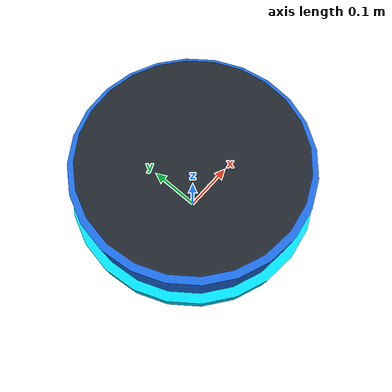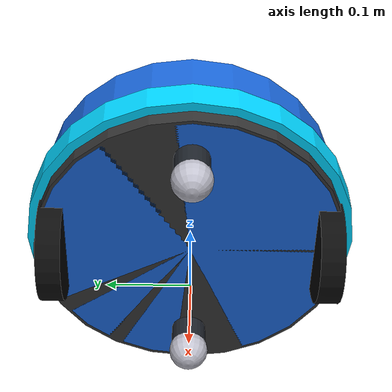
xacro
<?xml version="1.0"?>
<!-- GRaCEmo ViRa — Clean Rebuild                                                   -->
<!-- Piece 1: Mobile Base Subsystem                                                 -->
<robot name="gracemo_vira_base" xmlns:xacro="http://www.ros.org/wiki/xacro">

  <!-- Include Shared Materials -->
  <xacro:include filename="materials.xacro" />

  <!-- Mathematical Parameters & Dimensions                                     -->
  <xacro:property name="wheel_radius"     value="0.065" />  <!-- 130mm diameter -->
  <xacro:property name="wheel_width"      value="0.030" />  <!-- 30mm thickness -->
  <xacro:property name="wheelbase"        value="0.340" />  <!-- 340mm track width -->
  <xacro:property name="chassis_radius"   value="0.190" />  <!-- 380mm diameter -->
  <xacro:property name="chassis_height"   value="0.140" />  <!-- 140mm height -->
  <xacro:property name="bumper_radius"    value="0.205" />  <!-- 410mm diameter ring -->
  <xacro:property name="bumper_height"    value="0.040" />  <!-- 40mm ring thickness -->
  <xacro:property name="caster_radius"    value="0.025" />  <!-- 50mm ball diameter -->
  <xacro:property name="caster_x_offset"  value="0.140" />  <!-- 140mm fore/aft from axle -->

  <!-- Base Footprint (Ground Projection: Z = 0.000m)                           -->
  <link name="base_footprint" />

  <joint name="base_footprint_joint" type="fixed">
    <parent link="base_footprint" />
    <child link="base_link" />
    <origin xyz="0 0 ${wheel_radius}" rpy="0 0 0" />
  </joint>

  <!-- Base Link: Cylindrical Mobile Chassis & Balanced Core                    -->
  <link name="base_link">
    <!-- Visual 1: Main Cylindrical Outer Hull (Chassis Blue) -->
    <visual>
      <origin xyz="0 0 ${chassis_height / 2.0}" rpy="0 0 0" />
      <geometry>
        <cylinder radius="${chassis_radius}" length="${chassis_height}" />
      </geometry>
      <material name="chassis_blue" />
    </visual>

    <!-- Visual 2: Lower Protective Ground Skirt (Dark Grey) -->
    <visual>
      <origin xyz="0 0 ${chassis_height * 0.18}" rpy="0 0 0" />
      <geometry>
        <cylinder radius="${chassis_radius + 0.004}" length="${chassis_height * 0.36}" />
      </geometry>
      <material name="dark_grey" />
    </visual>

    <!-- Visual 3: Top Deck Plate (Matte Dark Titanium flush deck) -->
    <visual>
      <origin xyz="0 0 ${chassis_height + 0.004}" rpy="0 0 0" />
      <geometry>
        <cylinder radius="${chassis_radius * 0.94}" length="0.008" />
      </geometry>
      <material name="matte_dark_titanium" />
    </visual>

    <!-- Physical Collision: Tight non-overlapping bounding cylinder -->
    <collision name="base_chassis_collision">
      <origin xyz="0 0 ${chassis_height / 2.0}" rpy="0 0 0" />
      <geometry>
        <cylinder radius="${chassis_radius}" length="${chassis_height}" />
      </geometry>
    </collision>

    <!-- Balanced Inertia: Heavy 8.0kg low CoM placed strictly on axle centerline -->
    <inertial>
      <origin xyz="0.0 0.0 0.020" rpy="0 0 0" />
      <mass value="8.0" />
      <inertia ixx="0.085" ixy="0.0" ixz="0.0" iyy="0.085" iyz="0.0" izz="0.144" />
    </inertial>
  </link>

  <gazebo reference="base_link">
    <material>Gazebo/Blue</material>
  </gazebo>

  <!-- 360° Tactile Bumper Ring (Physical Collision Sensor & Accent Halo)       -->
  <link name="bumper_link">
    <visual>
      <origin xyz="0 0 0" rpy="0 0 0" />
      <geometry>
        <cylinder radius="${bumper_radius}" length="${bumper_height}" />
      </geometry>
      <material name="cyan_glow" />
    </visual>
    <collision name="bumper_collision">
      <origin xyz="0 0 0" rpy="0 0 0" />
      <geometry>
        <cylinder radius="${bumper_radius}" length="${bumper_height}" />
      </geometry>
    </collision>
    <inertial>
      <mass value="0.25" />
      <inertia ixx="0.001" ixy="0.0" ixz="0.0" iyy="0.001" iyz="0.0" izz="0.002" />
    </inertial>
  </link>

  <joint name="bumper_joint" type="fixed">
    <parent link="base_link" />
    <child link="bumper_link" />
    <origin xyz="0 0 0.040" rpy="0 0 0" />
  </joint>

  <gazebo reference="bumper_link">
    <material>Gazebo/TurquoiseGlow</material>
  </gazebo>

  <!-- Drive Wheels (Left & Right with Rubber Tread & Metallic Rim)             -->
  <xacro:macro name="drive_wheel" params="prefix y_offset flip_sign">
    <link name="${prefix}_wheel_link">
      <!-- Rubber Tire Tread -->
      <visual>
        <origin xyz="0 0 0" rpy="${pi/2} 0 0" />
        <geometry>
          <cylinder radius="${wheel_radius}" length="${wheel_width}" />
        </geometry>
        <material name="rubber_black" />
      </visual>
      <!-- Metallic Silver Wheel Hub Rim -->
      <visual>
        <origin xyz="0 ${flip_sign * 0.002} 0" rpy="${pi/2} 0 0" />
        <geometry>
          <cylinder radius="${wheel_radius * 0.70}" length="${wheel_width * 1.05}" />
        </geometry>
        <material name="metallic_silver" />
      </visual>
      <!-- Central Axle Nut -->
      <visual>
        <origin xyz="0 ${flip_sign * (wheel_width / 2.0 + 0.004)} 0" rpy="${pi/2} 0 0" />
        <geometry>
          <cylinder radius="0.015" length="0.008" />
        </geometry>
        <material name="matte_dark_titanium" />
      </visual>
      <!-- Collision Cylinder -->
      <collision>
        <origin xyz="0 0 0" rpy="${pi/2} 0 0" />
        <geometry>
          <cylinder radius="${wheel_radius}" length="${wheel_width}" />
        </geometry>
      </collision>
      <!-- Inertia: solid cylinder m=0.6kg, r=0.065m, h=0.03m -->
      <inertial>
        <mass value="0.60" />
        <inertia ixx="0.00067" ixy="0.0" ixz="0.0" iyy="0.00067" iyz="0.0" izz="0.00126" />
      </inertial>
    </link>

    <joint name="${prefix}_wheel_joint" type="continuous">
      <parent link="base_link" />
      <child link="${prefix}_wheel_link" />
      <origin xyz="0 ${y_offset} 0" rpy="0 0 0" />
      <axis xyz="0 1 0" />
      <dynamics damping="0.1" friction="0.05" />
    </joint>

    <gazebo reference="${prefix}_wheel_link">
      <mu1>1.5</mu1>
      <mu2>1.5</mu2>
      <kp>1000000.0</kp>
      <kd>10.0</kd>
      <minDepth>0.001</minDepth>
      <material>Gazebo/DarkGrey</material>
    </gazebo>
  </xacro:macro>

  <xacro:drive_wheel prefix="left"  y_offset="${wheelbase / 2.0}"  flip_sign="1" />
  <xacro:drive_wheel prefix="right" y_offset="${-wheelbase / 2.0}" flip_sign="-1" />

  <!-- Support Casters (Front & Rear Ground-Tangent Frictionless Gliders)        -->
  <xacro:macro name="support_caster" params="prefix x_offset">
    <link name="${prefix}_caster_link">
      <!-- Rolling Metallic Ball -->
      <visual>
        <origin xyz="0 0 0" rpy="0 0 0" />
        <geometry>
          <sphere radius="${caster_radius}" />
        </geometry>
        <material name="metallic_silver" />
      </visual>
      <!-- Structural Stanchion / Caster Bracket bolted into chassis underside -->
      <visual>
        <origin xyz="0 0 0.022" rpy="0 0 0" />
        <geometry>
          <cylinder radius="0.022" length="0.035" />
        </geometry>
        <material name="matte_dark_titanium" />
      </visual>
      <!-- Floor Tangent Collision: Sphere touches at exactly Z = 0.000m -->
      <collision>
        <origin xyz="0 0 0" rpy="0 0 0" />
        <geometry>
          <sphere radius="${caster_radius}" />
        </geometry>
      </collision>
      <inertial>
        <mass value="0.10" />
        <inertia ixx="0.000025" ixy="0.0" ixz="0.0" iyy="0.000025" iyz="0.0" izz="0.000025" />
      </inertial>
    </link>

    <joint name="${prefix}_caster_joint" type="fixed">
      <parent link="base_link" />
      <child link="${prefix}_caster_link" />
      <!-- Z offset: wheel_radius (0.065) - caster_radius (0.025) = 0.040 downward -->
      <origin xyz="${x_offset} 0 ${-wheel_radius + caster_radius}" rpy="0 0 0" />
    </joint>

    <gazebo reference="${prefix}_caster_link">
      <mu1>0.0</mu1>
      <mu2>0.0</mu2>
      <kp>1000000.0</kp>
      <kd>10.0</kd>
      <minDepth>0.0001</minDepth>
      <material>Gazebo/Grey</material>
    </gazebo>
  </xacro:macro>

  <xacro:support_caster prefix="front" x_offset="${caster_x_offset}" />
  <xacro:support_caster prefix="rear"  x_offset="${-caster_x_offset}" />

  <!-- Differential Drive Actuator Plugin (Gazebo Harmonic)                     -->
  <gazebo>
    <plugin filename="gz-sim-diff-drive-system" name="gz::sim::systems::DiffDrive">
      <left_joint>left_wheel_joint</left_joint>
      <right_joint>right_wheel_joint</right_joint>
      <wheel_separation>${wheelbase}</wheel_separation>
      <wheel_radius>${wheel_radius}</wheel_radius>
      <max_wheel_torque>150.0</max_wheel_torque>
      <max_linear_acceleration>5.0</max_linear_acceleration>
      <max_angular_acceleration>8.0</max_angular_acceleration>
      <min_linear_velocity>-1.5</min_linear_velocity>
      <max_linear_velocity>1.5</max_linear_velocity>
      <min_angular_velocity>-3.0</min_angular_velocity>
      <max_angular_velocity>3.0</max_angular_velocity>
      <topic>/cmd_vel</topic>
      <odom_topic>/odom</odom_topic>
      <tf_topic>/tf</tf_topic>
      <frame_id>odom</frame_id>
      <child_frame_id>base_footprint</child_frame_id>
      <odom_publish_frequency>50</odom_publish_frequency>
    </plugin>
  </gazebo>

</robot>

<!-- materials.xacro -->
<robot xmlns:xacro="http://www.ros.org/wiki/xacro">

  <material name="chassis_blue">
    <color rgba="0.10 0.40 0.85 1.0"/>
  </material>

  <material name="dark_grey">
    <color rgba="0.20 0.20 0.20 1.0"/>
  </material>

  <material name="rubber_black">
    <color rgba="0.05 0.05 0.05 1.0"/>
  </material>

  <material name="metallic_silver">
    <color rgba="0.75 0.75 0.80 1.0"/>
  </material>

  <material name="camera_lens_black">
    <color rgba="0.0 0.0 0.0 1.0"/>
  </material>

  <material name="lidar_orange">
    <color rgba="0.95 0.45 0.05 1.0"/>
  </material>

  <material name="cyan_glow">
    <color rgba="0.0 0.83 1.0 1.0"/>
  </material>

  <material name="matte_dark_titanium">
    <color rgba="0.12 0.14 0.17 1.0"/>
  </material>

  <material name="safety_orange">
    <color rgba="1.0 0.4745 0.0 1.0"/>
  </material>

  <material name="accent_orange">
    <color rgba="1.0 0.4745 0.0 1.0"/>
  </material>

  <material name="pure_white">
    <color rgba="0.96 0.96 0.96 1.0"/>
  </material>

</robot>
